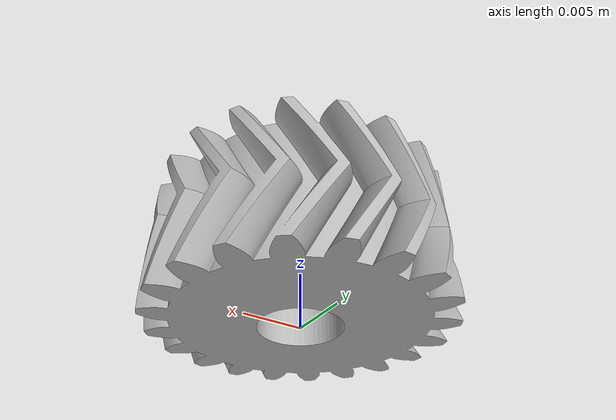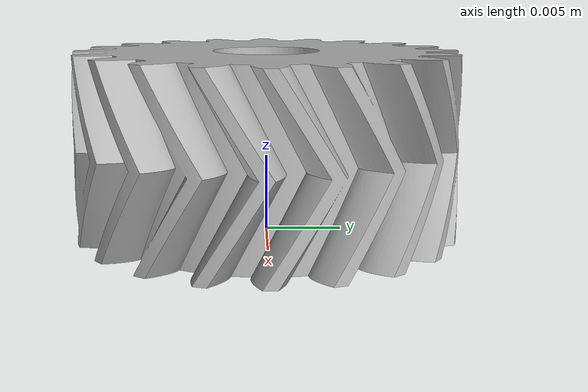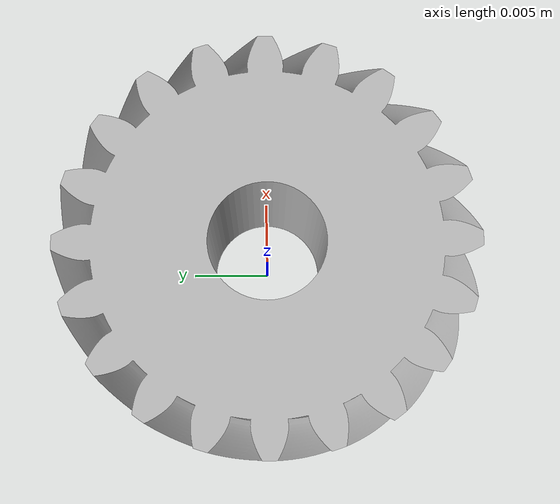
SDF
<?xml version="1.0" ?>
<sdf version="1.5">
  <model name="right_gear">
    <static>false</static>
    <link name="link">
      <collision name="collision">
        <geometry>
          <mesh>
            <scale>0.001 0.0011 0.001</scale>
            <uri>model://right_gear/meshes/right_gear.dae</uri>
          </mesh>
        </geometry>
      </collision>
      <visual name="visual">
        <geometry>
          <mesh>
            <scale>0.001 0.001 0.001</scale>
            <uri>model://right_gear/meshes/right_gear.dae</uri>
          </mesh>
        </geometry>
      </visual>
    </link>
  </model>
</sdf>
